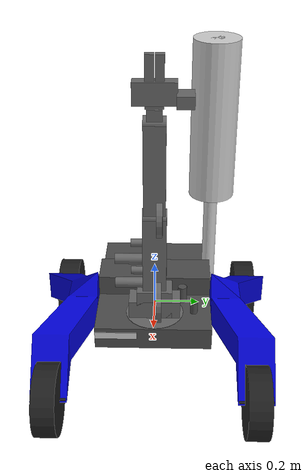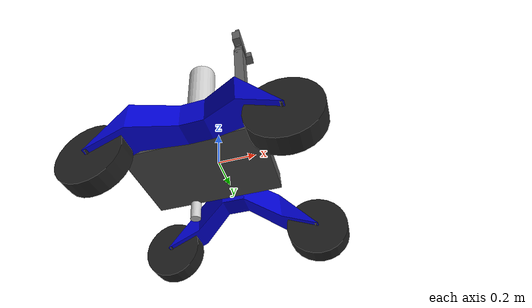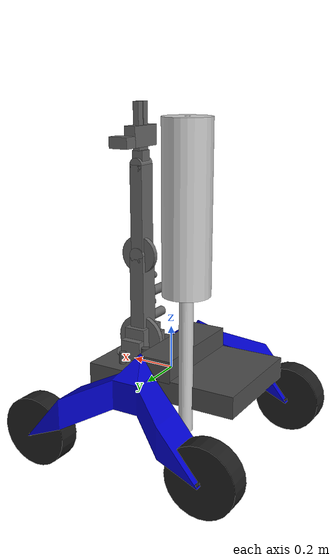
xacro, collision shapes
<?xml version="1.0"?>
<robot xmlns:xacro="http://www.ros.org/wiki/xacro"
       name="aleph2">

  <xacro:include filename="$(find aleph2_description)/urdf/aleph2.gazebo" />
  <xacro:include filename="$(find aleph2_description)/urdf/materials.xacro" />

  <link name="base_link">
    <visual>
      <geometry>
        <mesh filename="package://aleph2_description/meshes/base.STL" />
      </geometry>
      <origin xyz="0 0 0" rpy="${pi/2} 0 ${pi/2}"/>
      <material name="base" />
    </visual>
    <visual>
      <geometry>
        <cylinder radius="0.02" length="0.12" />
      </geometry>
      <origin xyz="0.06 0.125 0.063" />
      <material name="motor">
        <color rgba="0 0 0.5 1"/>
      </material>
    </visual>
    <visual>
      <geometry>
        <cylinder radius="0.016" length="0.1" />
      </geometry>
      <origin xyz="0.151 0.175 0.053" />
      <material name="encoder">
        <color rgba="0 0.5 0 1"/>
      </material>
    </visual>
    <collision>
      <geometry>
        <box size="0.72 0.5 0.1"/>
      </geometry>
      <origin xyz="-0.08 0 0"/>
    </collision>
    <collision>
      <geometry>
        <box size="0.16 0.5 0.1"/>
      </geometry>
      <origin xyz="-0.06 0 0.09"/>
    </collision>
    <collision>
      <geometry>
        <cylinder radius="0.02" length="0.12" />
      </geometry>
      <origin xyz="0.06 0.125 0.063" />
    </collision>
    <collision>
      <geometry>
        <cylinder radius="0.016" length="0.1" />
      </geometry>
      <origin xyz="0.151 0.175 0.053" />
    </collision>
    <inertial>
      <origin xyz="-0.06700 0.00064 0.00551"/>
      <mass value="9.0" />
      <inertia ixx="0.23691" ixy="-0.00014" ixz="-0.00314"
               iyy="0.23328" iyz="-0.00054" izz="0.40961" />
    </inertial>
  </link>

  <xacro:macro name="rocker" params="name">
    <link name="rocker_${name}_link">
      <visual>
        <geometry>
          <mesh filename="package://aleph2_description/meshes/rocker.STL"/>
        </geometry>
        <material name="rocker" />
      </visual>
      <collision>
        <geometry>
          <mesh filename="package://aleph2_description/meshes/rocker_collision.STL" />
        </geometry>
      </collision>
      <inertial>
        <origin xyz="0.00000 -0.01737 0.03763"/>
        <mass value="1.5" />
        <inertia ixx="0.01934" ixy="-0.00942" ixz="-0.00271"
                 iyy="0.03716" iyz="0.00516"  izz="0.04409" />
      </inertial>
    </link>
  </xacro:macro>

  <xacro:macro name="wheel" params="name">
    <link name="wheel_${name}_link">
      <visual>
        <geometry>
          <mesh filename="package://aleph2_description/meshes/wheel.STL"/>
        </geometry>
        <material name="wheel" />
      </visual>
      <visual name="piasta">
        <geometry>
          <cylinder radius="0.05" length="0.12"/>
        </geometry>
        <origin xyz="0 0 0" rpy="${pi/2} 0 0"/>
        <material name="piasta">
          <color rgba="0.5 0.5 0.5 1" />
        </material>
      </visual>
      <visual name="walek">
        <geometry>
          <cylinder radius="0.0055" length="0.15"/>
        </geometry>
        <origin xyz="0 0 0" rpy="${pi/2} 0 0"/>
        <material name="walek">
          <color rgba="0.7 0.7 0.7 1" />
        </material>
      </visual>
      <collision>
        <geometry>
          <cylinder radius="0.16" length="0.1" />
        </geometry>
        <origin xyz="0 0 0" rpy="${pi/2} 0 0"/>
      </collision>
      <collision>
        <geometry>
          <cylinder radius="0.007" length="0.15"/>
        </geometry>
        <origin xyz="0 0 0" rpy="${pi/2} 0 0"/>
      </collision>
      <inertial>
        <origin xyz="0.00000 0.00000 0.00000"/>
        <mass value="6.0" />
        <inertia ixx="0.03845" ixy="0.00000" ixz="0.00000"
                 iyy="0.06495" iyz="0.00000" izz="0.03845" />
      </inertial>
    </link>
  </xacro:macro>

  <xacro:rocker name="R" />
  <xacro:rocker name="L" />

  <xacro:wheel name="FR" />
  <xacro:wheel name="RR" />
  <xacro:wheel name="FL" />
  <xacro:wheel name="RL" />

  <link name="manip_base_link">
    <visual>
      <geometry>
          <mesh filename="package://aleph2_description/meshes/manip_base.STL"/>
      </geometry>
      <origin rpy="${pi/2} 0 ${-pi/2}"/>
      <material name="manip" />
    </visual>
    <collision>
      <geometry>
        <cylinder radius="0.125" length="0.02" />
      </geometry>
      <origin xyz="0 0 0.01"/>
    </collision>
    <collision>
      <geometry>
        <cylinder radius="0.11" length="0.025" />
      </geometry>
      <origin xyz="0 0.017 0.09" rpy="${pi/2} 0 0"/>
    </collision>
    <collision>
      <geometry>
        <box size="0.1 0.15 0.15"/>
      </geometry>
      <origin xyz="0 0 0.075"/>
    </collision>
    <collision>
      <geometry>
        <box size="0.1 0.22 0.10"/>
      </geometry>
      <origin xyz="0 0 0.05"/>
    </collision>
    <inertial>
      <origin xyz="-0.00251 0.00769 0.05483"/>
      <mass value="2.0" />
      <inertia ixx="0.00845" ixy="-0.00007" ixz="-0.00023"
               iyy="0.00892" iyz="0.00049"  izz="0.00862" />
    </inertial>
  </link>

  <link name="manip_shoulder_link">
    <visual>
      <geometry>
          <mesh filename="package://aleph2_description/meshes/manip_shoulder.STL"/>
      </geometry>
      <origin rpy="${pi} 0 0"/>
      <material name="manip" />
    </visual>
    <visual>
      <geometry>
        <cylinder radius="0.0225" length="0.122"/>
      </geometry>
      <origin xyz="0.082 0 0.106" rpy="0 0 0" />
      <material name="motor">
        <color rgba="0 0 0.5 1"/>
      </material>
    </visual>
    <visual>
      <geometry>
        <cylinder radius="0.0225" length="0.122"/>
      </geometry>
      <origin xyz="0.2 0 0.106" rpy="0 0 0" />
      <material name="motor">
        <color rgba="0 0 0.5 1"/>
      </material>
    </visual>
    <visual>
      <geometry>
        <cylinder radius="0.017" length="0.054"/>
      </geometry>
      <origin xyz="0.147 -0.005 0.072" rpy="0 0 0" />
      <material name="enkoder">
        <color rgba="0 0.5 0 1"/>
      </material>
    </visual>
    <visual>
      <geometry>
        <cylinder radius="0.017" length="0.054"/>
      </geometry>
      <origin xyz="0.278 0 0.072" rpy="0 0 0" />
      <material name="enkoder">
        <color rgba="0 0.5 0 1"/>
      </material>
    </visual>
    <collision>
      <geometry>
        <box size="0.4 0.07 0.1" />
      </geometry>
      <origin xyz="0.2 0.0 0" />
    </collision>
    <collision>
      <geometry>
        <cylinder radius="0.035" length="0.1"/>
      </geometry>
    </collision>
    <collision>
      <geometry>
        <cylinder radius="0.035" length="0.1"/>
      </geometry>
      <origin xyz="0.4 0 0"/>
    </collision>
    <collision>
      <geometry>
        <cylinder radius="0.0225" length="0.122"/>
      </geometry>
      <origin xyz="0.082 0 0.106" rpy="0 0 0" />
      <material name="motor">
        <color rgba="0 0 0.5 1"/>
      </material>
    </collision>
    <collision>
      <geometry>
        <cylinder radius="0.0225" length="0.122"/>
      </geometry>
      <origin xyz="0.2 0 0.106" rpy="0 0 0" />
      <material name="motor">
        <color rgba="0 0 0.5 1"/>
      </material>
    </collision>
    <collision>
      <geometry>
        <cylinder radius="0.017" length="0.054"/>
      </geometry>
      <origin xyz="0.147 -0.005 0.072" rpy="0 0 0" />
      <material name="enkoder">
        <color rgba="0 0.5 0 1"/>
      </material>
    </collision>
    <collision>
      <geometry>
        <cylinder radius="0.017" length="0.054"/>
      </geometry>
      <origin xyz="0.278 0 0.072" rpy="0 0 0" />
      <material name="enkoder">
        <color rgba="0 0.5 0 1"/>
      </material>
    </collision>
    <inertial>
      <origin xyz="0.20075 0.00074 0.00055"/>
      <mass value="3.0" />
      <inertia ixx="0.00612" ixy="-0.00012" ixz="0.00022"
               iyy="0.04816" iyz="0.00000"  izz="0.04531" />
    </inertial>
  </link>

  <link name="manip_elbow_link">
    <visual>
      <geometry>
          <mesh filename="package://aleph2_description/meshes/manip_elbow.STL"/>
      </geometry>
      <origin rpy="0 ${pi/2} 0"/>
      <material name="manip" />
    </visual>
    <collision>
      <geometry>
        <box size="0.4 0.06 0.09" />
      </geometry>
      <origin xyz="0.2 0.0 0" />
    </collision>
    <collision>
      <geometry>
        <cylinder radius="0.03" length="0.09"/>
      </geometry>
      <origin xyz="0.4 0 0"/>
    </collision>
    <collision>
      <geometry>
        <cylinder radius="0.085" length="0.025"/>
      </geometry>
      <origin xyz="0 0 0.02"/>
    </collision>
    <inertial>
      <origin xyz="0.12196 0.00137 0.00713"/>
      <mass value="3.0" />
      <inertia ixx="0.00480" ixy="-0.00030" ixz="-0.00277"
               iyy="0.05728" iyz="0.00004"  izz="0.05732" />
    </inertial>
  </link>

  <link name="manip_wrist_link">
    <visual>
      <geometry>
          <mesh filename="package://aleph2_description/meshes/manip_wrist.STL"/>
      </geometry>
      <origin rpy="0 ${pi/2} 0"/>
      <material name="manip" />
    </visual>
    <visual>
      <geometry>
        <cylinder radius="0.02" length="0.108"/>
      </geometry>
      <origin xyz="-0.03 0 0" rpy="0 ${pi/2} 0"/>
      <material name="motor">
        <color rgba="0 0 0.5 1"/>
      </material>
    </visual>
    <visual>
      <geometry>
        <box size="0.015 0.03 0.008"/>
      </geometry>
      <origin xyz="-0.088 0.005 0" rpy="0 ${pi/2} 0"/>
      <material name="enkoder">
        <color rgba="0 0.5 0 1"/>
      </material>
    </visual>
    <collision>
      <geometry>
        <box size="0.154 0.052 0.060"/>
      </geometry>
      <origin xyz="-0.016 0 0" rpy="0 0 0"/>
    </collision>
    <inertial>
      <origin xyz="-0.02500 0.00000 0.00000"/>
      <mass value="0.7" />
      <inertia ixx="0.00042" ixy="0.00000" ixz="0.00000"
               iyy="0.00120" iyz="0.00000" izz="0.00112" />
    </inertial>
  </link>

  <link name="manip_gripper_link">
    <visual>
      <geometry>
          <mesh filename="package://aleph2_description/meshes/manip_gripper.STL"/>
      </geometry>
      <origin rpy="0 ${pi/2} 0"/>
      <material name="manip" />
    </visual>
    <collision>
      <geometry>
        <box size="0.017 0.072 0.03"/>
      </geometry>
      <origin xyz="0.0085 0 0"/>
    </collision>
    <collision>
      <geometry>
        <box size="0.09 0.171 0.054"/>
      </geometry>
      <origin xyz="0.061 0 0"/>
    </collision>
    <collision>
      <geometry>
        <box size="0.049 0.068 0.089"/>
      </geometry>
      <origin xyz="0.0405 -0.1155 0.0175"/>
    </collision>
    <inertial>
      <origin xyz="0.04679 -0.03978 0.00393"/>
      <mass value="1.0" />
      <inertia ixx="0.00496" ixy="0.00022" ixz="-0.00002"
               iyy="0.00108" iyz="-0.00036" izz="0.00535" />
    </inertial>
  </link>

  <link name="manip_jaw_L_link">
    <visual>
      <geometry>
        <mesh filename="package://aleph2_description/meshes/manip_jaw.STL" />
      </geometry>
      <origin rpy="${-pi/2} 0 ${pi/2}"/>
      <material name="manip" />
    </visual>
    <collision>
      <geometry>
        <box size="0.180 0.035 0.027" />
      </geometry>
      <origin xyz="0.09 0.0105 0"/>
    </collision>
    <inertial>
      <origin xyz="0.09230 0.00805 0.00000"/>
      <mass value="0.15" />
      <inertia ixx="0.00003" ixy="0.00005" ixz="0.00000"
               iyy="0.00033" iyz="0.00000" izz="0.00033" />
    </inertial>
  </link>

  <link name="manip_jaw_R_link">
    <visual>
      <geometry>
        <mesh filename="package://aleph2_description/meshes/manip_jaw.STL" />
      </geometry>
      <origin rpy="${-pi/2} ${pi} ${pi/2}"/>
      <material name="manip" />
    </visual>
    <collision>
      <geometry>
        <box size="0.180 0.035 0.027" />
      </geometry>
      <origin xyz="0.09 -0.0105 0"/>
    </collision>
    <inertial>
      <origin xyz="0.09230 -0.00805 0.00000"/>
      <mass value="0.15" />
      <inertia ixx="0.00003" ixy="0.00005" ixz="0.00000"
               iyy="0.00033" iyz="0.00000" izz="0.00033" />
    </inertial>
  </link>

  <link name="manip_effector_tip_link"/>

  <link name="mast_link">
    <visual>
      <geometry>
        <cylinder radius="0.02" length="1.3" />
      </geometry>
      <origin xyz="0 0 0.65" rpi="0 0 0"/>
      <material name="mast" />
    </visual>
    <collision>
      <geometry>
        <cylinder radius="0.03" length="1.3" />
      </geometry>
      <origin xyz="0 0 0.65" rpi="0 0 0"/>
    </collision>
    <collision>
      <geometry>
        <cylinder radius="0.1" length="0.7" />
      </geometry>
      <origin xyz="0 0 0.95" rpi="0 0 0"/>
    </collision>
    <inertial>
      <mass value="1.0" />
      <inertia ixx="1.0" ixy="0.0" ixz="0.0" iyy="1.0" iyz="0.0" izz="1.0" />
    </inertial>
  </link>

  <link name="zed_position">
    <visual>
      <origin xyz="0 0 0" rpy="0 0 0"/>
        <geometry>
          <mesh filename="package://aleph2_description/meshes/ZED.stl" />
        </geometry>
      <material name="light_grey">
        <color rgba="0.8 0.8 0.8 1"/>
      </material>
    </visual>
    <collision>
      <geometry>
        <box size="0.035 0.18 0.032"/>
      </geometry>
    </collision>
  </link>

  <!-- ROCKERS -->

  <joint name="rocker_R_joint" type="fixed">
    <parent link="base_link"/>
    <child link="rocker_R_link"/>
      <origin xyz="0 -0.375 0" rpy="${pi/2} 0 ${pi}"/>
  </joint>

  <joint name="rocker_L_joint" type="fixed">
    <parent link="base_link"/>
    <child link="rocker_L_link"/>
      <origin xyz="0 0.375 0" rpy="${pi/2} 0 0"/>
  </joint>

  <!-- WHEELS -->

  <joint name="wheel_FR_joint" type="continuous">
    <parent link="rocker_R_link"/>
    <child link="wheel_FR_link"/>
    <origin xyz="-0.418 -0.226 -0.07" rpy="${pi/2} 0 0" />
    <axis xyz="0 1 0"/>
    <dynamics damping="0.5" friction="0.2"/>
    <limit effort="20" velocity="25.0"/>
  </joint>

  <joint name="wheel_RR_joint" type="continuous">
    <parent link="rocker_R_link"/>
    <child link="wheel_RR_link"/>
    <origin xyz="0.418 -0.226 -0.07" rpy="${-pi/2} 0 0" />
    <axis xyz="0 -1 0"/>
    <dynamics damping="0.5" friction="0.2"/>
    <limit effort="20" velocity="25.0"/>
  </joint>

  <joint name="wheel_FL_joint" type="continuous">
    <parent link="rocker_L_link"/>
    <child link="wheel_FL_link"/>
    <origin xyz="0.418 -0.226 -0.07" rpy="${-pi/2} 0 0" />
    <axis xyz="0 1 0"/>
    <dynamics damping="0.5" friction="0.2"/>
    <limit effort="20" velocity="25.0"/>
  </joint>

  <joint name="wheel_RL_joint" type="continuous">
    <parent link="rocker_L_link"/>
    <child link="wheel_RL_link"/>
    <origin xyz="-0.418 -0.226 -0.07" rpy="${pi/2} 0 0" />
    <axis xyz="0 -1 0"/>
    <dynamics damping="0.5" friction="0.2"/>
    <limit effort="20" velocity="25.0"/>
  </joint>

  <!-- MANIP -->

  <joint name="manip_base_joint" type="continuous">
    <parent link="base_link"/>
    <child link="manip_base_link"/>
    <origin xyz="0.151 0.0035 0.032"/>
    <axis xyz="0 0 1"/>
    <limit effort="100" velocity="0.15"/>
    <dynamics damping="100.0" friction="60.0"/>
  </joint>

  <joint name="manip_shoulder_joint" type="revolute">
    <parent link="manip_base_link"/>
    <child link="manip_shoulder_link"/>
    <origin xyz="0 0 0.09" rpy="${pi/2} ${-pi/2} 0"/>
    <axis xyz="0 0 1" />
    <limit effort="100" lower="${-pi/2}" upper="${pi/2}" velocity="0.3"/>
    <dynamics damping="100.0" friction="60.0"/>
  </joint>

  <joint name="manip_elbow_joint" type="revolute">
    <parent link="manip_shoulder_link"/>
    <child link="manip_elbow_link"/>
    <origin xyz="0.4 0 0" rpy="${pi} 0 0" />
    <axis xyz="0 0 -1" />
    <limit effort="100" lower="-2.28" upper="2.43" velocity="0.5"/>
    <dynamics damping="100.0" friction="50.0"/>
  </joint>

  <joint name="manip_wrist_tilt_joint" type="revolute">
    <parent link="manip_elbow_link"/>
    <child link="manip_wrist_link"/>
    <origin xyz="0.4 0 0" />
    <axis xyz="0 0 -1" />
    <limit effort="100" lower="-2.2" upper="2.2" velocity="0.5"/>
    <dynamics damping="20.0" friction="40.0"/>
  </joint>

  <joint name="manip_wrist_roll_joint" type="revolute">
    <parent link="manip_wrist_link"/>
    <child link="manip_gripper_link"/>
    <origin xyz="0.06 0 0" rpy="${-pi/2} 0 0"/>
    <axis xyz="-1 0 0" />
    <limit effort="50" lower="${-pi}" upper="${pi}" velocity="0.5"/>
    <dynamics damping="3.0" friction="10.0"/>
  </joint>

  <joint name="manip_gripper_joint" type="prismatic">
    <parent link="manip_gripper_link"/>
    <child link="manip_jaw_L_link"/>
    <origin xyz="0.025 -0.03 0"/>
    <axis xyz="0 1 0" />
    <limit effort="60" lower="-0.033" upper="0" velocity="0.05"/>
    <dynamics damping="5.0" friction="30.0"/>
  </joint>

  <joint name="manip_gripper_joint_mimic" type="prismatic">
    <parent link="manip_gripper_link"/>
    <child link="manip_jaw_R_link"/>
    <origin xyz="0.025 0.03 0"/>
    <axis xyz="0 -1 0" />
    <mimic joint="manip_gripper_joint" />
    <limit effort="60" lower="-0.033" upper="0" velocity="0.05"/>
    <dynamics damping="5.0" friction="30.0"/>
  </joint>

  <joint name="manip_effector_tip_joint" type="fixed">
    <parent link="manip_gripper_link"/>
    <child link="manip_effector_tip_link"/>
    <origin xyz="0.20 0 0"/>
  </joint>

  <!-- MASZT -->

  <joint name="mast_joint" type="fixed">
    <parent link="base_link" />
    <child link="mast_link" />
    <origin xyz="-0.22 0.25 -0.15"/>
  </joint>

  <!-- ZED -->

  <joint name="zed_camera_joint" type="fixed">
    <parent link="base_link"/>
    <child link="zed_position"/>
    <origin xyz="0.265 -0.16 0.015"/>
  </joint>

  <!-- TRASNMISSIONS -->

  <transmission name="wheel_FR_transmission">
    <type>transmission_interface/SimpleTransmission</type>
    <joint name="wheel_FR_joint">
      <hardwareInterface>hardware_interface/VelocityJointInterface</hardwareInterface>
    </joint>
    <actuator name="wheel_FR_actuator">
      <hardwareInterface>hardware_interface/VelocityJointInterface</hardwareInterface>
      <mechanicalReduction>1</mechanicalReduction>
    </actuator>
  </transmission>

  <transmission name="wheel_FL_transmission">
    <type>transmission_interface/SimpleTransmission</type>
    <joint name="wheel_FL_joint">
      <hardwareInterface>hardware_interface/VelocityJointInterface</hardwareInterface>
    </joint>
    <actuator name="wheel_FL_actuator">
      <hardwareInterface>hardware_interface/VelocityJointInterface</hardwareInterface>
      <mechanicalReduction>1</mechanicalReduction>
    </actuator>
  </transmission>

  <transmission name="wheel_RR_transmission">
    <type>transmission_interface/SimpleTransmission</type>
    <joint name="wheel_RR_joint">
      <hardwareInterface>hardware_interface/VelocityJointInterface</hardwareInterface>
    </joint>
    <actuator name="wheel_RR_actuator">
      <hardwareInterface>hardware_interface/VelocityJointInterface</hardwareInterface>
      <mechanicalReduction>1</mechanicalReduction>
    </actuator>
  </transmission>

  <transmission name="wheel_RL_transmission">
    <type>transmission_interface/SimpleTransmission</type>
    <joint name="wheel_RL_joint">
      <hardwareInterface>hardware_interface/VelocityJointInterface</hardwareInterface>
    </joint>
    <actuator name="wheel_RL_actuator">
      <hardwareInterface>hardware_interface/VelocityJointInterface</hardwareInterface>
      <mechanicalReduction>1</mechanicalReduction>
    </actuator>
  </transmission>

  <transmission name="manip_base_transmission">
    <type>transmission_interface/SimpleTransmission</type>
    <joint name="manip_base_joint">
      <hardwareInterface>hardware_interface/EffortJointInterface</hardwareInterface>
    </joint>
    <actuator name="manip_base_actuator">
      <hardwareInterface>hardware_interface/EffortJointInterface</hardwareInterface>
      <mechanicalReduction>1</mechanicalReduction>
    </actuator>
  </transmission>

  <transmission name="manip_shoulder_transmission">
    <type>transmission_interface/SimpleTransmission</type>
    <joint name="manip_shoulder_joint">
      <hardwareInterface>hardware_interface/EffortJointInterface</hardwareInterface>
    </joint>
    <actuator name="manip_shoulder_actuator">
      <hardwareInterface>hardware_interface/EffortJointInterface</hardwareInterface>
      <mechanicalReduction>1</mechanicalReduction>
    </actuator>
  </transmission>

  <transmission name="manip_elbow_transmission">
    <type>transmission_interface/SimpleTransmission</type>
    <joint name="manip_elbow_joint">
      <hardwareInterface>hardware_interface/EffortJointInterface</hardwareInterface>
    </joint>
    <actuator name="manip_elbow_actuator">
      <hardwareInterface>hardware_interface/EffortJointInterface</hardwareInterface>
      <mechanicalReduction>1</mechanicalReduction>
    </actuator>
  </transmission>

  <transmission name="manip_wrist_tilt_transmission">
    <type>transmission_interface/SimpleTransmission</type>
    <joint name="manip_wrist_tilt_joint">
      <hardwareInterface>hardware_interface/EffortJointInterface</hardwareInterface>
    </joint>
    <actuator name="manip_wrist_tilt_actuator">
      <hardwareInterface>hardware_interface/EffortJointInterface</hardwareInterface>
      <mechanicalReduction>1</mechanicalReduction>
    </actuator>
  </transmission>

  <transmission name="manip_wrist_roll_transmission">
    <type>transmission_interface/SimpleTransmission</type>
    <joint name="manip_wrist_roll_joint">
      <hardwareInterface>hardware_interface/EffortJointInterface</hardwareInterface>
    </joint>
    <actuator name="manip_wrist_roll_actuator">
      <hardwareInterface>hardware_interface/EffortJointInterface</hardwareInterface>
      <mechanicalReduction>1</mechanicalReduction>
    </actuator>
  </transmission>

  <transmission name="manip_gripper_transmission">
    <type>transmission_interface/SimpleTransmission</type>
    <joint name="manip_gripper_joint">
      <hardwareInterface>hardware_interface/EffortJointInterface</hardwareInterface>
    </joint>
    <actuator name="manip_gripper_actuator">
      <hardwareInterface>hardware_interface/EffortJointInterface</hardwareInterface>
      <mechanicalReduction>1</mechanicalReduction>
    </actuator>
  </transmission>

</robot>

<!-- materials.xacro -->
<robot xmlns:xacro="http://www.ros.org/wiki/xacro">

  <material name="base">
    <color rgba="0.3 0.3 0.3 1"/>
  </material>

  <material name="rocker">
    <color rgba="0 0 0.8 1"/>
  </material>

  <material name="wheel">
    <texture filename="package://aleph2_description/textures/wheel.jpg" />
  </material>

  <material name="manip">
    <color rgba="0.4 0.4 0.4 1"/>
  </material>

  <material name="motor">
    <color rgba="0 0 0.5 1"/>
  </material>

  <material name="encoder">
    <color rgba="0 0.5 0 1"/>
  </material>

  <material name="mast">
    <color rgba="0.8 0.8 0.8 1" />
  </material>

</robot>
